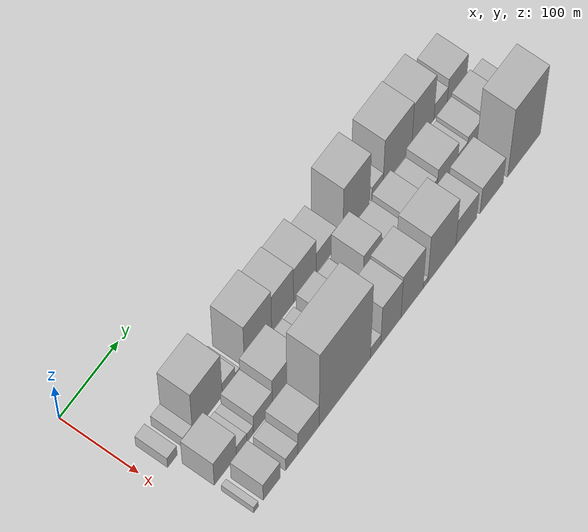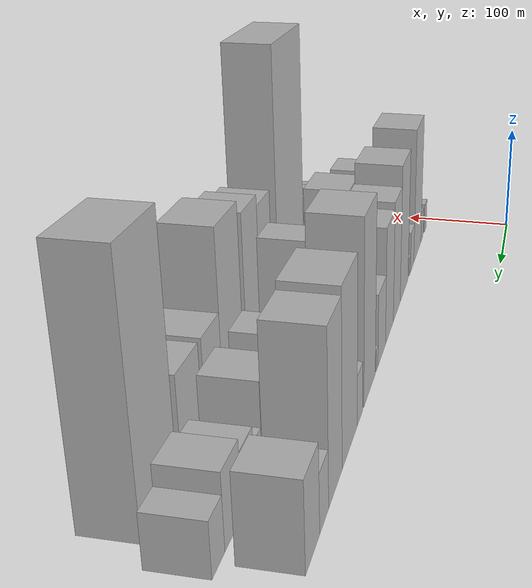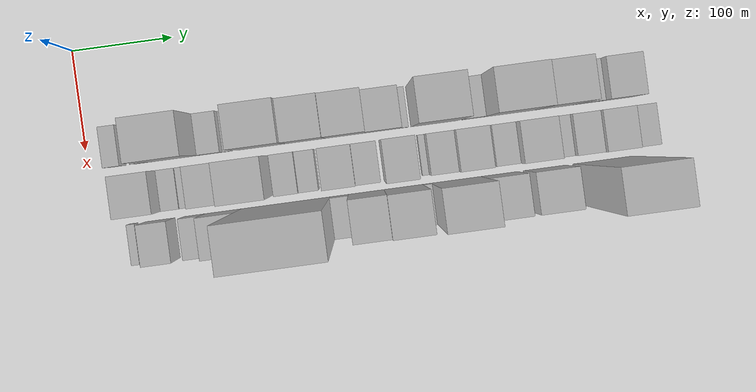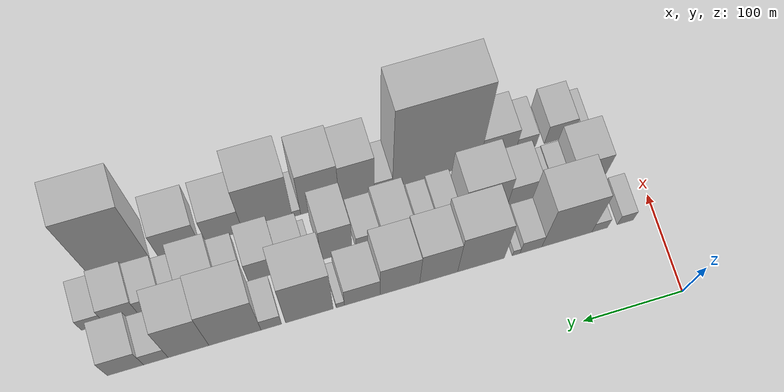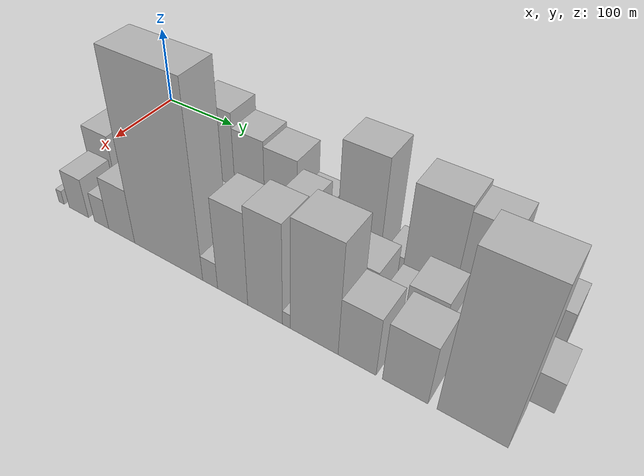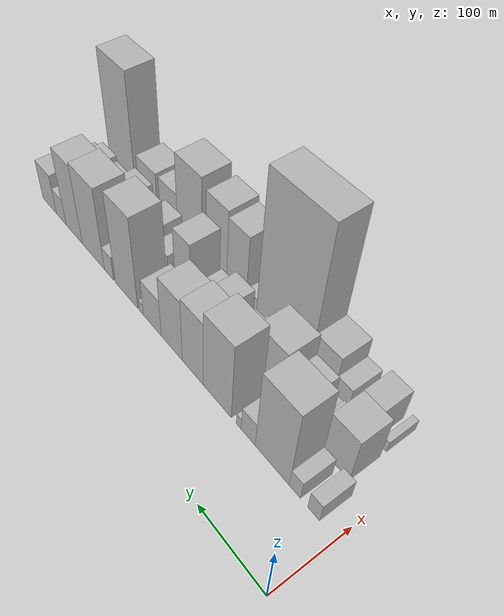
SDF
<sdf version="1.6">
 <world name="default">
  <model name="building_18">
   <static>1</static>
   <pose>100.0000 29.8661 0 0.000000 0.000000 0.000000</pose>
   <link name="link">
    <pose>0 0 15.00 0 0 0</pose>
    <collision name="collision"><geometry><box><size>40.0000 16.3483 30.0000</size></box></geometry></collision>
    <visual name="visual">
     <cast_shadows>0</cast_shadows>
     <geometry><box><size>40.0000 16.3483 30.0000</size></box></geometry>
     <material>
      <script>
       <uri>model://HANNAS_wall/materials/scripts</uri>
       <uri>model://HANNAS_wall/materials/textures</uri>
       <name>vrc/HANNAS_wall</name>
      </script>
     </material>
    </visual>
   </link>
  </model>
  <model name="building_19">
   <static>1</static>
   <pose>100.0000 56.0798 0 0.000000 0.000000 0.000000</pose>
   <link name="link">
    <pose>0 0 15.00 0 0 0</pose>
    <collision name="collision"><geometry><box><size>40.0000 16.0791 30.0000</size></box></geometry></collision>
    <visual name="visual">
     <cast_shadows>0</cast_shadows>
     <geometry><box><size>40.0000 16.0791 30.0000</size></box></geometry>
     <material>
      <script>
       <uri>model://HANNAS_wall/materials/scripts</uri>
       <uri>model://HANNAS_wall/materials/textures</uri>
       <name>vrc/HANNAS_wall</name>
      </script>
     </material>
    </visual>
   </link>
  </model>
  <model name="building_20">
   <static>1</static>
   <pose>100.0000 89.4226 0 0.000000 0.000000 0.000000</pose>
   <link name="link">
    <pose>0 0 64.50 0 0 0</pose>
    <collision name="collision"><geometry><box><size>40.0000 50.6065 129.0000</size></box></geometry></collision>
    <visual name="visual">
     <cast_shadows>0</cast_shadows>
     <geometry><box><size>40.0000 50.6065 129.0000</size></box></geometry>
     <material>
      <script>
       <uri>model://HANNAS_wall/materials/scripts</uri>
       <uri>model://HANNAS_wall/materials/textures</uri>
       <name>vrc/HANNAS_wall</name>
      </script>
     </material>
    </visual>
   </link>
  </model>
  <model name="building_21">
   <static>1</static>
   <pose>100.0000 125.7961 0 0.000000 0.000000 0.000000</pose>
   <link name="link">
    <pose>0 0 19.50 0 0 0</pose>
    <collision name="collision"><geometry><box><size>40.0000 22.1406 39.0000</size></box></geometry></collision>
    <visual name="visual">
     <cast_shadows>0</cast_shadows>
     <geometry><box><size>40.0000 22.1406 39.0000</size></box></geometry>
     <material>
      <script>
       <uri>model://HANNAS_wall/materials/scripts</uri>
       <uri>model://HANNAS_wall/materials/textures</uri>
       <name>vrc/HANNAS_wall</name>
      </script>
     </material>
    </visual>
   </link>
  </model>
  <model name="building_22">
   <static>1</static>
   <pose>100.0000 140.7265 0 0.000000 0.000000 0.000000</pose>
   <link name="link">
    <pose>0 0 9.00 0 0 0</pose>
    <collision name="collision"><geometry><box><size>40.0000 7.7201 18.0000</size></box></geometry></collision>
    <visual name="visual">
     <cast_shadows>0</cast_shadows>
     <geometry><box><size>40.0000 7.7201 18.0000</size></box></geometry>
     <material>
      <script>
       <uri>model://HANNAS_wall/materials/scripts</uri>
       <uri>model://HANNAS_wall/materials/textures</uri>
       <name>vrc/HANNAS_wall</name>
      </script>
     </material>
    </visual>
   </link>
  </model>
  <model name="building_23">
   <static>1</static>
   <pose>100.0000 176.0666 0 0.000000 0.000000 0.000000</pose>
   <link name="link">
    <pose>0 0 61.50 0 0 0</pose>
    <collision name="collision"><geometry><box><size>40.0000 46.9602 123.0000</size></box></geometry></collision>
    <visual name="visual">
     <cast_shadows>0</cast_shadows>
     <geometry><box><size>40.0000 46.9602 123.0000</size></box></geometry>
     <material>
      <script>
       <uri>model://HANNAS_wall/materials/scripts</uri>
       <uri>model://HANNAS_wall/materials/textures</uri>
       <name>vrc/HANNAS_wall</name>
      </script>
     </material>
    </visual>
   </link>
  </model>
  <model name="building_24">
   <static>1</static>
   <pose>100.0000 218.4966 0 0.000000 0.000000 0.000000</pose>
   <link name="link">
    <pose>0 0 52.50 0 0 0</pose>
    <collision name="collision"><geometry><box><size>40.0000 37.8998 105.0000</size></box></geometry></collision>
    <visual name="visual">
     <cast_shadows>0</cast_shadows>
     <geometry><box><size>40.0000 37.8998 105.0000</size></box></geometry>
     <material>
      <script>
       <uri>model://HANNAS_wall/materials/scripts</uri>
       <uri>model://HANNAS_wall/materials/textures</uri>
       <name>vrc/HANNAS_wall</name>
      </script>
     </material>
    </visual>
   </link>
  </model>
  <model name="building_25">
   <static>1</static>
   <pose>100.0000 257.1336 0 0.000000 0.000000 0.000000</pose>
   <link name="link">
    <pose>0 0 49.50 0 0 0</pose>
    <collision name="collision"><geometry><box><size>40.0000 39.3741 99.0000</size></box></geometry></collision>
    <visual name="visual">
     <cast_shadows>0</cast_shadows>
     <geometry><box><size>40.0000 39.3741 99.0000</size></box></geometry>
     <material>
      <script>
       <uri>model://HANNAS_wall/materials/scripts</uri>
       <uri>model://HANNAS_wall/materials/textures</uri>
       <name>vrc/HANNAS_wall</name>
      </script>
     </material>
    </visual>
   </link>
  </model>
  <model name="building_26">
   <static>1</static>
   <pose>100.0000 294.4762 0 0.000000 0.000000 0.000000</pose>
   <link name="link">
    <pose>0 0 30.00 0 0 0</pose>
    <collision name="collision"><geometry><box><size>40.0000 35.3112 60.0000</size></box></geometry></collision>
    <visual name="visual">
     <cast_shadows>0</cast_shadows>
     <geometry><box><size>40.0000 35.3112 60.0000</size></box></geometry>
     <material>
      <script>
       <uri>model://HANNAS_wall/materials/scripts</uri>
       <uri>model://HANNAS_wall/materials/textures</uri>
       <name>vrc/HANNAS_wall</name>
      </script>
     </material>
    </visual>
   </link>
  </model>
  <model name="building_27">
   <static>1</static>
   <pose>100.0000 316.2050 0 0.000000 0.000000 0.000000</pose>
   <link name="link">
    <pose>0 0 9.00 0 0 0</pose>
    <collision name="collision"><geometry><box><size>40.0000 8.1465 18.0000</size></box></geometry></collision>
    <visual name="visual">
     <cast_shadows>0</cast_shadows>
     <geometry><box><size>40.0000 8.1465 18.0000</size></box></geometry>
     <material>
      <script>
       <uri>model://HANNAS_wall/materials/scripts</uri>
       <uri>model://HANNAS_wall/materials/textures</uri>
       <name>vrc/HANNAS_wall</name>
      </script>
     </material>
    </visual>
   </link>
  </model>
  <model name="building_28">
   <static>1</static>
   <pose>100.0000 346.7484 0 0.000000 0.000000 0.000000</pose>
   <link name="link">
    <pose>0 0 72.00 0 0 0</pose>
    <collision name="collision"><geometry><box><size>40.0000 46.9402 144.0000</size></box></geometry></collision>
    <visual name="visual">
     <cast_shadows>0</cast_shadows>
     <geometry><box><size>40.0000 46.9402 144.0000</size></box></geometry>
     <material>
      <script>
       <uri>model://HANNAS_wall/materials/scripts</uri>
       <uri>model://HANNAS_wall/materials/textures</uri>
       <name>vrc/HANNAS_wall</name>
      </script>
     </material>
    </visual>
   </link>
  </model>
  <model name="building_29">
   <static>1</static>
   <pose>100.0000 384.2798 0 0.000000 0.000000 0.000000</pose>
   <link name="link">
    <pose>0 0 19.50 0 0 0</pose>
    <collision name="collision"><geometry><box><size>40.0000 20.1228 39.0000</size></box></geometry></collision>
    <visual name="visual">
     <cast_shadows>0</cast_shadows>
     <geometry><box><size>40.0000 20.1228 39.0000</size></box></geometry>
     <material>
      <script>
       <uri>model://HANNAS_wall/materials/scripts</uri>
       <uri>model://HANNAS_wall/materials/textures</uri>
       <name>vrc/HANNAS_wall</name>
      </script>
     </material>
    </visual>
   </link>
  </model>
  <model name="building_30">
   <static>1</static>
   <pose>100.0000 419.7971 0 0.000000 0.000000 0.000000</pose>
   <link name="link">
    <pose>0 0 64.50 0 0 0</pose>
    <collision name="collision"><geometry><box><size>40.0000 50.9118 129.0000</size></box></geometry></collision>
    <visual name="visual">
     <cast_shadows>0</cast_shadows>
     <geometry><box><size>40.0000 50.9118 129.0000</size></box></geometry>
     <material>
      <script>
       <uri>model://HANNAS_wall/materials/scripts</uri>
       <uri>model://HANNAS_wall/materials/textures</uri>
       <name>vrc/HANNAS_wall</name>
      </script>
     </material>
    </visual>
   </link>
  </model>
  <model name="building_31">
   <static>1</static>
   <pose>100.0000 465.1028 0 0.000000 0.000000 0.000000</pose>
   <link name="link">
    <pose>0 0 61.50 0 0 0</pose>
    <collision name="collision"><geometry><box><size>40.0000 39.6996 123.0000</size></box></geometry></collision>
    <visual name="visual">
     <cast_shadows>0</cast_shadows>
     <geometry><box><size>40.0000 39.6996 123.0000</size></box></geometry>
     <material>
      <script>
       <uri>model://HANNAS_wall/materials/scripts</uri>
       <uri>model://HANNAS_wall/materials/textures</uri>
       <name>vrc/HANNAS_wall</name>
      </script>
     </material>
    </visual>
   </link>
  </model>
  <model name="building_32">
   <static>1</static>
   <pose>100.0000 496.9546 0 0.000000 0.000000 0.000000</pose>
   <link name="link">
    <pose>0 0 21.00 0 0 0</pose>
    <collision name="collision"><geometry><box><size>40.0000 24.0039 42.0000</size></box></geometry></collision>
    <visual name="visual">
     <cast_shadows>0</cast_shadows>
     <geometry><box><size>40.0000 24.0039 42.0000</size></box></geometry>
     <material>
      <script>
       <uri>model://HANNAS_wall/materials/scripts</uri>
       <uri>model://HANNAS_wall/materials/textures</uri>
       <name>vrc/HANNAS_wall</name>
      </script>
     </material>
    </visual>
   </link>
  </model>
  <model name="building_33">
   <static>1</static>
   <pose>100.0000 526.4223 0 0.000000 0.000000 0.000000</pose>
   <link name="link">
    <pose>0 0 31.50 0 0 0</pose>
    <collision name="collision"><geometry><box><size>40.0000 34.9316 63.0000</size></box></geometry></collision>
    <visual name="visual">
     <cast_shadows>0</cast_shadows>
     <geometry><box><size>40.0000 34.9316 63.0000</size></box></geometry>
     <material>
      <script>
       <uri>model://HANNAS_wall/materials/scripts</uri>
       <uri>model://HANNAS_wall/materials/textures</uri>
       <name>vrc/HANNAS_wall</name>
      </script>
     </material>
    </visual>
   </link>
  </model>
  <model name="building_50">
   <static>1</static>
   <pose>149.0000 52.8915 0 0.000000 0.000000 0.000000</pose>
   <link name="link">
    <pose>0 0 36.00 0 0 0</pose>
    <collision name="collision"><geometry><box><size>40.0000 37.6177 72.0000</size></box></geometry></collision>
    <visual name="visual">
     <cast_shadows>0</cast_shadows>
     <geometry><box><size>40.0000 37.6177 72.0000</size></box></geometry>
     <material>
      <script>
       <uri>model://HANNAS_wall/materials/scripts</uri>
       <uri>model://HANNAS_wall/materials/textures</uri>
       <name>vrc/HANNAS_wall</name>
      </script>
     </material>
    </visual>
   </link>
  </model>
  <model name="building_51">
   <static>1</static>
   <pose>149.0000 80.6054 0 0.000000 0.000000 0.000000</pose>
   <link name="link">
    <pose>0 0 15.00 0 0 0</pose>
    <collision name="collision"><geometry><box><size>40.0000 17.8101 30.0000</size></box></geometry></collision>
    <visual name="visual">
     <cast_shadows>0</cast_shadows>
     <geometry><box><size>40.0000 17.8101 30.0000</size></box></geometry>
     <material>
      <script>
       <uri>model://HANNAS_wall/materials/scripts</uri>
       <uri>model://HANNAS_wall/materials/textures</uri>
       <name>vrc/HANNAS_wall</name>
      </script>
     </material>
    </visual>
   </link>
  </model>
  <model name="building_52">
   <static>1</static>
   <pose>149.0000 95.2533 0 0.000000 0.000000 0.000000</pose>
   <link name="link">
    <pose>0 0 13.50 0 0 0</pose>
    <collision name="collision"><geometry><box><size>40.0000 11.4857 27.0000</size></box></geometry></collision>
    <visual name="visual">
     <cast_shadows>0</cast_shadows>
     <geometry><box><size>40.0000 11.4857 27.0000</size></box></geometry>
     <material>
      <script>
       <uri>model://HANNAS_wall/materials/scripts</uri>
       <uri>model://HANNAS_wall/materials/textures</uri>
       <name>vrc/HANNAS_wall</name>
      </script>
     </material>
    </visual>
   </link>
  </model>
  <model name="building_53">
   <static>1</static>
   <pose>149.0000 117.1469 0 0.000000 0.000000 0.000000</pose>
   <link name="link">
    <pose>0 0 28.50 0 0 0</pose>
    <collision name="collision"><geometry><box><size>40.0000 32.3017 57.0000</size></box></geometry></collision>
    <visual name="visual">
     <cast_shadows>0</cast_shadows>
     <geometry><box><size>40.0000 32.3017 57.0000</size></box></geometry>
     <material>
      <script>
       <uri>model://HANNAS_wall/materials/scripts</uri>
       <uri>model://HANNAS_wall/materials/textures</uri>
       <name>vrc/HANNAS_wall</name>
      </script>
     </material>
    </visual>
   </link>
  </model>
  <model name="building_54">
   <static>1</static>
   <pose>149.0000 155.9006 0 0.000000 0.000000 0.000000</pose>
   <link name="link">
    <pose>0 0 45.00 0 0 0</pose>
    <collision name="collision"><geometry><box><size>40.0000 45.2056 90.0000</size></box></geometry></collision>
    <visual name="visual">
     <cast_shadows>0</cast_shadows>
     <geometry><box><size>40.0000 45.2056 90.0000</size></box></geometry>
     <material>
      <script>
       <uri>model://HANNAS_wall/materials/scripts</uri>
       <uri>model://HANNAS_wall/materials/textures</uri>
       <name>vrc/HANNAS_wall</name>
      </script>
     </material>
    </visual>
   </link>
  </model>
  <model name="building_55">
   <static>1</static>
   <pose>149.0000 194.3009 0 0.000000 0.000000 0.000000</pose>
   <link name="link">
    <pose>0 0 21.00 0 0 0</pose>
    <collision name="collision"><geometry><box><size>40.0000 23.5950 42.0000</size></box></geometry></collision>
    <visual name="visual">
     <cast_shadows>0</cast_shadows>
     <geometry><box><size>40.0000 23.5950 42.0000</size></box></geometry>
     <material>
      <script>
       <uri>model://HANNAS_wall/materials/scripts</uri>
       <uri>model://HANNAS_wall/materials/textures</uri>
       <name>vrc/HANNAS_wall</name>
      </script>
     </material>
    </visual>
   </link>
  </model>
  <model name="building_56">
   <static>1</static>
   <pose>149.0000 215.7939 0 0.000000 0.000000 0.000000</pose>
   <link name="link">
    <pose>0 0 16.50 0 0 0</pose>
    <collision name="collision"><geometry><box><size>40.0000 19.3909 33.0000</size></box></geometry></collision>
    <visual name="visual">
     <cast_shadows>0</cast_shadows>
     <geometry><box><size>40.0000 19.3909 33.0000</size></box></geometry>
     <material>
      <script>
       <uri>model://HANNAS_wall/materials/scripts</uri>
       <uri>model://HANNAS_wall/materials/textures</uri>
       <name>vrc/HANNAS_wall</name>
      </script>
     </material>
    </visual>
   </link>
  </model>
  <model name="building_57">
   <static>1</static>
   <pose>149.0000 245.4726 0 0.000000 0.000000 0.000000</pose>
   <link name="link">
    <pose>0 0 30.00 0 0 0</pose>
    <collision name="collision"><geometry><box><size>40.0000 31.9666 60.0000</size></box></geometry></collision>
    <visual name="visual">
     <cast_shadows>0</cast_shadows>
     <geometry><box><size>40.0000 31.9666 60.0000</size></box></geometry>
     <material>
      <script>
       <uri>model://HANNAS_wall/materials/scripts</uri>
       <uri>model://HANNAS_wall/materials/textures</uri>
       <name>vrc/HANNAS_wall</name>
      </script>
     </material>
    </visual>
   </link>
  </model>
  <model name="building_58">
   <static>1</static>
   <pose>149.0000 273.6602 0 0.000000 0.000000 0.000000</pose>
   <link name="link">
    <pose>0 0 21.00 0 0 0</pose>
    <collision name="collision"><geometry><box><size>40.0000 24.4086 42.0000</size></box></geometry></collision>
    <visual name="visual">
     <cast_shadows>0</cast_shadows>
     <geometry><box><size>40.0000 24.4086 42.0000</size></box></geometry>
     <material>
      <script>
       <uri>model://HANNAS_wall/materials/scripts</uri>
       <uri>model://HANNAS_wall/materials/textures</uri>
       <name>vrc/HANNAS_wall</name>
      </script>
     </material>
    </visual>
   </link>
  </model>
  <model name="building_59">
   <static>1</static>
   <pose>149.0000 305.2462 0 0.000000 0.000000 0.000000</pose>
   <link name="link">
    <pose>0 0 51.00 0 0 0</pose>
    <collision name="collision"><geometry><box><size>40.0000 30.7636 102.0000</size></box></geometry></collision>
    <visual name="visual">
     <cast_shadows>0</cast_shadows>
     <geometry><box><size>40.0000 30.7636 102.0000</size></box></geometry>
     <material>
      <script>
       <uri>model://HANNAS_wall/materials/scripts</uri>
       <uri>model://HANNAS_wall/materials/textures</uri>
       <name>vrc/HANNAS_wall</name>
      </script>
     </material>
    </visual>
   </link>
  </model>
  <model name="building_60">
   <static>1</static>
   <pose>149.0000 330.9121 0 0.000000 0.000000 0.000000</pose>
   <link name="link">
    <pose>0 0 7.50 0 0 0</pose>
    <collision name="collision"><geometry><box><size>40.0000 6.5682 15.0000</size></box></geometry></collision>
    <visual name="visual">
     <cast_shadows>0</cast_shadows>
     <geometry><box><size>40.0000 6.5682 15.0000</size></box></geometry>
     <material>
      <script>
       <uri>model://HANNAS_wall/materials/scripts</uri>
       <uri>model://HANNAS_wall/materials/textures</uri>
       <name>vrc/HANNAS_wall</name>
      </script>
     </material>
    </visual>
   </link>
  </model>
  <model name="building_61">
   <static>1</static>
   <pose>149.0000 347.6319 0 0.000000 0.000000 0.000000</pose>
   <link name="link">
    <pose>0 0 22.50 0 0 0</pose>
    <collision name="collision"><geometry><box><size>40.0000 26.8714 45.0000</size></box></geometry></collision>
    <visual name="visual">
     <cast_shadows>0</cast_shadows>
     <geometry><box><size>40.0000 26.8714 45.0000</size></box></geometry>
     <material>
      <script>
       <uri>model://HANNAS_wall/materials/scripts</uri>
       <uri>model://HANNAS_wall/materials/textures</uri>
       <name>vrc/HANNAS_wall</name>
      </script>
     </material>
    </visual>
   </link>
  </model>
  <model name="building_62">
   <static>1</static>
   <pose>149.0000 377.2126 0 0.000000 0.000000 0.000000</pose>
   <link name="link">
    <pose>0 0 31.50 0 0 0</pose>
    <collision name="collision"><geometry><box><size>40.0000 32.2900 63.0000</size></box></geometry></collision>
    <visual name="visual">
     <cast_shadows>0</cast_shadows>
     <geometry><box><size>40.0000 32.2900 63.0000</size></box></geometry>
     <material>
      <script>
       <uri>model://HANNAS_wall/materials/scripts</uri>
       <uri>model://HANNAS_wall/materials/textures</uri>
       <name>vrc/HANNAS_wall</name>
      </script>
     </material>
    </visual>
   </link>
  </model>
  <model name="building_63">
   <static>1</static>
   <pose>149.0000 409.0577 0 0.000000 0.000000 0.000000</pose>
   <link name="link">
    <pose>0 0 21.00 0 0 0</pose>
    <collision name="collision"><geometry><box><size>40.0000 23.4001 42.0000</size></box></geometry></collision>
    <visual name="visual">
     <cast_shadows>0</cast_shadows>
     <geometry><box><size>40.0000 23.4001 42.0000</size></box></geometry>
     <material>
      <script>
       <uri>model://HANNAS_wall/materials/scripts</uri>
       <uri>model://HANNAS_wall/materials/textures</uri>
       <name>vrc/HANNAS_wall</name>
      </script>
     </material>
    </visual>
   </link>
  </model>
  <model name="building_64">
   <static>1</static>
   <pose>149.0000 439.0651 0 0.000000 0.000000 0.000000</pose>
   <link name="link">
    <pose>0 0 33.00 0 0 0</pose>
    <collision name="collision"><geometry><box><size>40.0000 36.6147 66.0000</size></box></geometry></collision>
    <visual name="visual">
     <cast_shadows>0</cast_shadows>
     <geometry><box><size>40.0000 36.6147 66.0000</size></box></geometry>
     <material>
      <script>
       <uri>model://HANNAS_wall/materials/scripts</uri>
       <uri>model://HANNAS_wall/materials/textures</uri>
       <name>vrc/HANNAS_wall</name>
      </script>
     </material>
    </visual>
   </link>
  </model>
  <model name="building_65">
   <static>1</static>
   <pose>149.0000 466.0553 0 0.000000 0.000000 0.000000</pose>
   <link name="link">
    <pose>0 0 16.50 0 0 0</pose>
    <collision name="collision"><geometry><box><size>40.0000 17.3658 33.0000</size></box></geometry></collision>
    <visual name="visual">
     <cast_shadows>0</cast_shadows>
     <geometry><box><size>40.0000 17.3658 33.0000</size></box></geometry>
     <material>
      <script>
       <uri>model://HANNAS_wall/materials/scripts</uri>
       <uri>model://HANNAS_wall/materials/textures</uri>
       <name>vrc/HANNAS_wall</name>
      </script>
     </material>
    </visual>
   </link>
  </model>
  <model name="building_66">
   <static>1</static>
   <pose>149.0000 488.1993 0 0.000000 0.000000 0.000000</pose>
   <link name="link">
    <pose>0 0 22.50 0 0 0</pose>
    <collision name="collision"><geometry><box><size>40.0000 26.9221 45.0000</size></box></geometry></collision>
    <visual name="visual">
     <cast_shadows>0</cast_shadows>
     <geometry><box><size>40.0000 26.9221 45.0000</size></box></geometry>
     <material>
      <script>
       <uri>model://HANNAS_wall/materials/scripts</uri>
       <uri>model://HANNAS_wall/materials/textures</uri>
       <name>vrc/HANNAS_wall</name>
      </script>
     </material>
    </visual>
   </link>
  </model>
  <model name="building_67">
   <static>1</static>
   <pose>149.0000 517.8214 0 0.000000 0.000000 0.000000</pose>
   <link name="link">
    <pose>0 0 27.00 0 0 0</pose>
    <collision name="collision"><geometry><box><size>40.0000 32.3223 54.0000</size></box></geometry></collision>
    <visual name="visual">
     <cast_shadows>0</cast_shadows>
     <geometry><box><size>40.0000 32.3223 54.0000</size></box></geometry>
     <material>
      <script>
       <uri>model://HANNAS_wall/materials/scripts</uri>
       <uri>model://HANNAS_wall/materials/textures</uri>
       <name>vrc/HANNAS_wall</name>
      </script>
     </material>
    </visual>
   </link>
  </model>
  <model name="building_68">
   <static>1</static>
   <pose>149.0000 545.4051 0 0.000000 0.000000 0.000000</pose>
   <link name="link">
    <pose>0 0 19.50 0 0 0</pose>
    <collision name="collision"><geometry><box><size>40.0000 22.8452 39.0000</size></box></geometry></collision>
    <visual name="visual">
     <cast_shadows>0</cast_shadows>
     <geometry><box><size>40.0000 22.8452 39.0000</size></box></geometry>
     <material>
      <script>
       <uri>model://HANNAS_wall/materials/scripts</uri>
       <uri>model://HANNAS_wall/materials/textures</uri>
       <name>vrc/HANNAS_wall</name>
      </script>
     </material>
    </visual>
   </link>
  </model>
  <model name="building_83">
   <static>1</static>
   <pose>198.0000 38.0836 0 0.000000 0.000000 0.000000</pose>
   <link name="link">
    <pose>0 0 9.00 0 0 0</pose>
    <collision name="collision"><geometry><box><size>40.0000 8.1729 18.0000</size></box></geometry></collision>
    <visual name="visual">
     <cast_shadows>0</cast_shadows>
     <geometry><box><size>40.0000 8.1729 18.0000</size></box></geometry>
     <material>
      <script>
       <uri>model://HANNAS_wall/materials/scripts</uri>
       <uri>model://HANNAS_wall/materials/textures</uri>
       <name>vrc/HANNAS_wall</name>
      </script>
     </material>
    </visual>
   </link>
  </model>
  <model name="building_84">
   <static>1</static>
   <pose>198.0000 64.7510 0 0.000000 0.000000 0.000000</pose>
   <link name="link">
    <pose>0 0 25.50 0 0 0</pose>
    <collision name="collision"><geometry><box><size>40.0000 29.1618 51.0000</size></box></geometry></collision>
    <visual name="visual">
     <cast_shadows>0</cast_shadows>
     <geometry><box><size>40.0000 29.1618 51.0000</size></box></geometry>
     <material>
      <script>
       <uri>model://HANNAS_wall/materials/scripts</uri>
       <uri>model://HANNAS_wall/materials/textures</uri>
       <name>vrc/HANNAS_wall</name>
      </script>
     </material>
    </visual>
   </link>
  </model>
  <model name="building_85">
   <static>1</static>
   <pose>198.0000 98.8506 0 0.000000 0.000000 0.000000</pose>
   <link name="link">
    <pose>0 0 19.50 0 0 0</pose>
    <collision name="collision"><geometry><box><size>40.0000 21.0376 39.0000</size></box></geometry></collision>
    <visual name="visual">
     <cast_shadows>0</cast_shadows>
     <geometry><box><size>40.0000 21.0376 39.0000</size></box></geometry>
     <material>
      <script>
       <uri>model://HANNAS_wall/materials/scripts</uri>
       <uri>model://HANNAS_wall/materials/textures</uri>
       <name>vrc/HANNAS_wall</name>
      </script>
     </material>
    </visual>
   </link>
  </model>
  <model name="building_86">
   <static>1</static>
   <pose>198.0000 127.6522 0 0.000000 0.000000 0.000000</pose>
   <link name="link">
    <pose>0 0 34.50 0 0 0</pose>
    <collision name="collision"><geometry><box><size>40.0000 36.5657 69.0000</size></box></geometry></collision>
    <visual name="visual">
     <cast_shadows>0</cast_shadows>
     <geometry><box><size>40.0000 36.5657 69.0000</size></box></geometry>
     <material>
      <script>
       <uri>model://HANNAS_wall/materials/scripts</uri>
       <uri>model://HANNAS_wall/materials/textures</uri>
       <name>vrc/HANNAS_wall</name>
      </script>
     </material>
    </visual>
   </link>
  </model>
  <model name="building_87">
   <static>1</static>
   <pose>198.0000 190.3566 0 0.000000 0.000000 0.000000</pose>
   <link name="link">
    <pose>0 0 112.50 0 0 0</pose>
    <collision name="collision"><geometry><box><size>40.0000 88.8431 225.0000</size></box></geometry></collision>
    <visual name="visual">
     <cast_shadows>0</cast_shadows>
     <geometry><box><size>40.0000 88.8431 225.0000</size></box></geometry>
     <material>
      <script>
       <uri>model://HANNAS_wall/materials/scripts</uri>
       <uri>model://HANNAS_wall/materials/textures</uri>
       <name>vrc/HANNAS_wall</name>
      </script>
     </material>
    </visual>
   </link>
  </model>
  <model name="building_88">
   <static>1</static>
   <pose>198.0000 243.8708 0 0.000000 0.000000 0.000000</pose>
   <link name="link">
    <pose>0 0 16.50 0 0 0</pose>
    <collision name="collision"><geometry><box><size>40.0000 18.1852 33.0000</size></box></geometry></collision>
    <visual name="visual">
     <cast_shadows>0</cast_shadows>
     <geometry><box><size>40.0000 18.1852 33.0000</size></box></geometry>
     <material>
      <script>
       <uri>model://HANNAS_wall/materials/scripts</uri>
       <uri>model://HANNAS_wall/materials/textures</uri>
       <name>vrc/HANNAS_wall</name>
      </script>
     </material>
    </visual>
   </link>
  </model>
  <model name="building_89">
   <static>1</static>
   <pose>198.0000 270.6750 0 0.000000 0.000000 0.000000</pose>
   <link name="link">
    <pose>0 0 57.00 0 0 0</pose>
    <collision name="collision"><geometry><box><size>40.0000 35.4232 114.0000</size></box></geometry></collision>
    <visual name="visual">
     <cast_shadows>0</cast_shadows>
     <geometry><box><size>40.0000 35.4232 114.0000</size></box></geometry>
     <material>
      <script>
       <uri>model://HANNAS_wall/materials/scripts</uri>
       <uri>model://HANNAS_wall/materials/textures</uri>
       <name>vrc/HANNAS_wall</name>
      </script>
     </material>
    </visual>
   </link>
  </model>
  <model name="building_90">
   <static>1</static>
   <pose>198.0000 307.7939 0 0.000000 0.000000 0.000000</pose>
   <link name="link">
    <pose>0 0 61.50 0 0 0</pose>
    <collision name="collision"><geometry><box><size>40.0000 38.8148 123.0000</size></box></geometry></collision>
    <visual name="visual">
     <cast_shadows>0</cast_shadows>
     <geometry><box><size>40.0000 38.8148 123.0000</size></box></geometry>
     <material>
      <script>
       <uri>model://HANNAS_wall/materials/scripts</uri>
       <uri>model://HANNAS_wall/materials/textures</uri>
       <name>vrc/HANNAS_wall</name>
      </script>
     </material>
    </visual>
   </link>
  </model>
  <model name="building_91">
   <static>1</static>
   <pose>198.0000 331.3585 0 0.000000 0.000000 0.000000</pose>
   <link name="link">
    <pose>0 0 9.00 0 0 0</pose>
    <collision name="collision"><geometry><box><size>40.0000 8.3143 18.0000</size></box></geometry></collision>
    <visual name="visual">
     <cast_shadows>0</cast_shadows>
     <geometry><box><size>40.0000 8.3143 18.0000</size></box></geometry>
     <material>
      <script>
       <uri>model://HANNAS_wall/materials/scripts</uri>
       <uri>model://HANNAS_wall/materials/textures</uri>
       <name>vrc/HANNAS_wall</name>
      </script>
     </material>
    </visual>
   </link>
  </model>
  <model name="building_92">
   <static>1</static>
   <pose>198.0000 360.3677 0 0.000000 0.000000 0.000000</pose>
   <link name="link">
    <pose>0 0 67.50 0 0 0</pose>
    <collision name="collision"><geometry><box><size>40.0000 49.7041 135.0000</size></box></geometry></collision>
    <visual name="visual">
     <cast_shadows>0</cast_shadows>
     <geometry><box><size>40.0000 49.7041 135.0000</size></box></geometry>
     <material>
      <script>
       <uri>model://HANNAS_wall/materials/scripts</uri>
       <uri>model://HANNAS_wall/materials/textures</uri>
       <name>vrc/HANNAS_wall</name>
      </script>
     </material>
    </visual>
   </link>
  </model>
  <model name="building_93">
   <static>1</static>
   <pose>198.0000 403.7409 0 0.000000 0.000000 0.000000</pose>
   <link name="link">
    <pose>0 0 36.00 0 0 0</pose>
    <collision name="collision"><geometry><box><size>40.0000 37.0424 72.0000</size></box></geometry></collision>
    <visual name="visual">
     <cast_shadows>0</cast_shadows>
     <geometry><box><size>40.0000 37.0424 72.0000</size></box></geometry>
     <material>
      <script>
       <uri>model://HANNAS_wall/materials/scripts</uri>
       <uri>model://HANNAS_wall/materials/textures</uri>
       <name>vrc/HANNAS_wall</name>
      </script>
     </material>
    </visual>
   </link>
  </model>
  <model name="building_94">
   <static>1</static>
   <pose>198.0000 449.0265 0 0.000000 0.000000 0.000000</pose>
   <link name="link">
    <pose>0 0 36.00 0 0 0</pose>
    <collision name="collision"><geometry><box><size>40.0000 41.5288 72.0000</size></box></geometry></collision>
    <visual name="visual">
     <cast_shadows>0</cast_shadows>
     <geometry><box><size>40.0000 41.5288 72.0000</size></box></geometry>
     <material>
      <script>
       <uri>model://HANNAS_wall/materials/scripts</uri>
       <uri>model://HANNAS_wall/materials/textures</uri>
       <name>vrc/HANNAS_wall</name>
      </script>
     </material>
    </visual>
   </link>
  </model>
  <model name="building_95">
   <static>1</static>
   <pose>198.0000 507.3738 0 0.000000 0.000000 0.000000</pose>
   <link name="link">
    <pose>0 0 93.00 0 0 0</pose>
    <collision name="collision"><geometry><box><size>40.0000 59.1658 186.0000</size></box></geometry></collision>
    <visual name="visual">
     <cast_shadows>0</cast_shadows>
     <geometry><box><size>40.0000 59.1658 186.0000</size></box></geometry>
     <material>
      <script>
       <uri>model://HANNAS_wall/materials/scripts</uri>
       <uri>model://HANNAS_wall/materials/textures</uri>
       <name>vrc/HANNAS_wall</name>
      </script>
     </material>
    </visual>
   </link>
  </model>
 </world>
</sdf>
